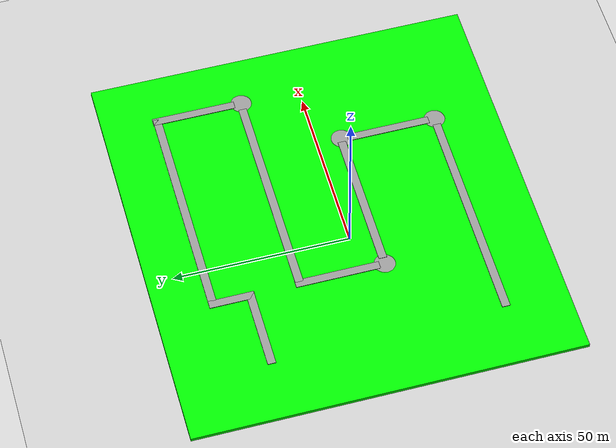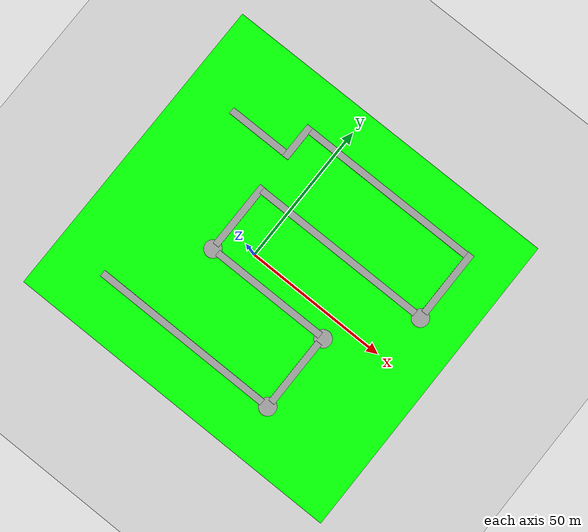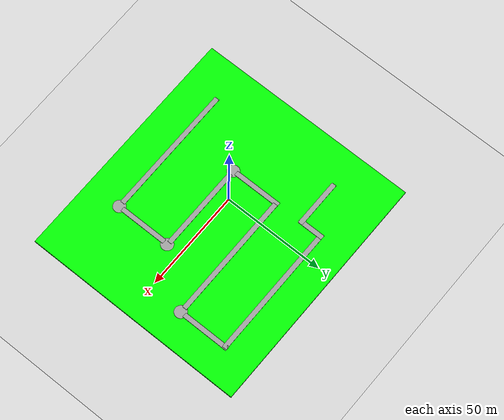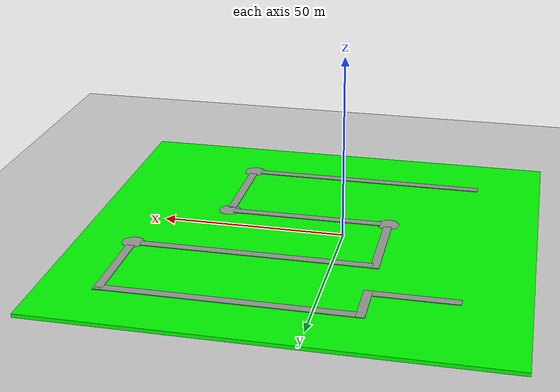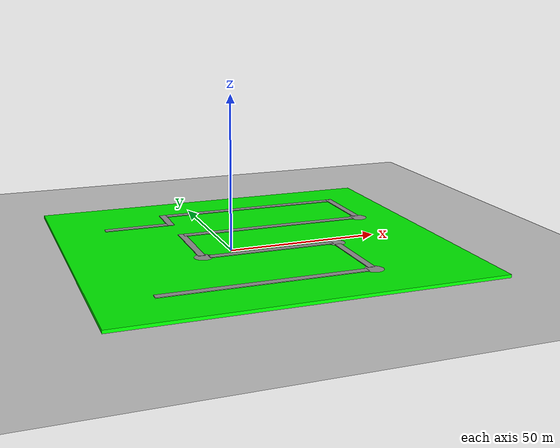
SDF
<sdf version="1.6">
 <world name="default">
  <light name="sun" type="directional">
   <pose>0 0 10 0 -0 0</pose>
   <diffuse>0.8 0.8 0.8 1</diffuse>
   <specular>0.2 0.2 0.2 1</specular>
   <attenuation>
    <range>1000</range>
    <constant>0.9</constant>
    <linear>0.01</linear>
    <quadratic>0.001</quadratic>
   </attenuation>
   <direction>-0.5 0.1 -0.9</direction>
  </light>
  <model name="ground_plane">
   <static>1</static>
   <link name="link">
    <collision name="collision">
     <geometry><plane><normal>0 0 1</normal><size>100 100</size></plane></geometry>
     <surface>
      <contact><collide_bitmask>65535</collide_bitmask></contact>
      <friction><ode><mu>100</mu><mu2>50</mu2></ode></friction>
     </surface>
    </collision>
    <visual name="visual">
     <cast_shadows>0</cast_shadows>
     <geometry><plane><normal>0 0 1</normal><size>100 100</size></plane></geometry>
     <material>
      <script><uri>file://media/materials/scripts/gazebo.material</uri><name>Gazebo/Grey</name></script>
     </material>
    </visual>
   </link>
  </model>
  <gravity>0 0 -9.8</gravity>
  <magnetic_field>6e-06 2.3e-05 -4.2e-05</magnetic_field>
  <atmosphere type="adiabatic"/>
  <physics name="default_physics" default="0" type="ode">
   <max_step_size>0.001</max_step_size>
   <real_time_factor>1</real_time_factor>
   <real_time_update_rate>1000</real_time_update_rate>
  </physics>
  <scene><ambient>0.4 0.4 0.4 1</ambient><background>0.7 0.7 0.7 1</background><shadows>1</shadows></scene>
  <audio><device>default</device></audio>
  <spherical_coordinates>
   <surface_model>EARTH_WGS84</surface_model>
   <latitude_deg>0</latitude_deg>
   <longitude_deg>0</longitude_deg>
   <elevation>0</elevation>
   <heading_deg>0</heading_deg>
  </spherical_coordinates>
  <model name="ground-1">
   <link name="link_0">
    <inertial>
     <mass>13145.8</mass>
     <inertia>
      <ixx>1.31831e+07</ixx>
      <ixy>0</ixy>
      <ixz>0</ixz>
      <iyy>1.57336e+07</iyy>
      <iyz>0</iyz>
      <izz>2.89145e+07</izz>
     </inertia>
    </inertial>
    <visual name="visual">
     <geometry><box><size>119.839 109.696 1</size></box></geometry>
     <material>
      <lighting>1</lighting>
      <script><uri>file://media/materials/scripts/gazebo.material</uri><name>Gazebo/Grey</name></script>
      <ambient>0 1 0 0</ambient>
      <shader type="vertex"><normal_map>__default__</normal_map></shader>
      <diffuse>0.7 0.7 0.7 1</diffuse>
      <specular>0.01 0.01 0.01 1</specular>
      <emissive>0 0 0 1</emissive>
     </material>
    </visual>
    <collision name="collision">
     <geometry><box><size>119.839 109.696 1</size></box></geometry>
     <surface>
      <friction>
       <ode><mu>1</mu><mu2>1</mu2><fdir1>0 0 0</fdir1><slip1>0</slip1><slip2>0</slip2></ode>
       <torsional>
        <coefficient>1</coefficient>
        <patch_radius>0</patch_radius>
        <surface_radius>0</surface_radius>
        <use_patch_radius>1</use_patch_radius>
        <ode><slip>0</slip></ode>
       </torsional>
      </friction>
      <bounce><restitution_coefficient>0</restitution_coefficient><threshold>1e+06</threshold></bounce>
      <contact>
       <collide_without_contact>0</collide_without_contact>
       <collide_without_contact_bitmask>1</collide_without_contact_bitmask>
       <collide_bitmask>1</collide_bitmask>
       <ode>
        <soft_cfm>0</soft_cfm>
        <soft_erp>0.2</soft_erp>
        <kp>1e+13</kp>
        <kd>1</kd>
        <max_vel>0.01</max_vel>
        <min_depth>0</min_depth>
       </ode>
       <bullet>
        <split_impulse>1</split_impulse>
        <split_impulse_penetration_threshold>-0.01</split_impulse_penetration_threshold>
        <soft_cfm>0</soft_cfm>
        <soft_erp>0.2</soft_erp>
        <kp>1e+13</kp>
        <kd>1</kd>
       </bullet>
      </contact>
     </surface>
    </collision>
   </link>
   <static>0</static>
   <pose>8.66268 2.77152 0.5 -0 -0 -0</pose>
  </model>
  <model name="track-4">
   <link name="link_0">
    <inertial>
     <mass>29.1805</mass>
     <inertia><ixx>13.0191</ixx><ixy>0</ixy><ixz>0</ixz><iyy>10129.7</iyy><iyz>0</iyz><izz>10142.6</izz></inertia>
    </inertial>
    <pose>-16.743 -39.8906 0 0 -0 0</pose>
    <visual name="visual">
     <geometry><box><size>64.5418 2.30552 0.196157</size></box></geometry>
     <material>
      <lighting>1</lighting>
      <script><uri>file://media/materials/scripts/gazebo.material</uri><name>Gazebo/Grey</name></script>
      <emissive>0 0 0 1</emissive>
     </material>
    </visual>
    <collision name="collision">
     <geometry><box><size>64.5418 2.30552 0.196157</size></box></geometry>
     <surface>
      <friction>
       <ode><mu>1</mu><mu2>1</mu2><fdir1>0 0 0</fdir1><slip1>0</slip1><slip2>0</slip2></ode>
       <torsional>
        <coefficient>1</coefficient>
        <patch_radius>0</patch_radius>
        <surface_radius>0</surface_radius>
        <use_patch_radius>1</use_patch_radius>
        <ode><slip>0</slip></ode>
       </torsional>
      </friction>
      <bounce><restitution_coefficient>0</restitution_coefficient><threshold>1e+06</threshold></bounce>
      <contact>
       <collide_without_contact>0</collide_without_contact>
       <collide_without_contact_bitmask>1</collide_without_contact_bitmask>
       <collide_bitmask>1</collide_bitmask>
       <ode>
        <soft_cfm>0</soft_cfm>
        <soft_erp>0.2</soft_erp>
        <kp>1e+13</kp>
        <kd>1</kd>
        <max_vel>0.01</max_vel>
        <min_depth>0</min_depth>
       </ode>
       <bullet>
        <split_impulse>1</split_impulse>
        <split_impulse_penetration_threshold>-0.01</split_impulse_penetration_threshold>
        <soft_cfm>0</soft_cfm>
        <soft_erp>0.2</soft_erp>
        <kp>1e+13</kp>
        <kd>1</kd>
       </bullet>
      </contact>
     </surface>
    </collision>
   </link>
   <link name="link_0_clone">
    <inertial>
     <mass>10.7667</mass>
     <inertia><ixx>4.80366</ixx><ixy>0</ixy><ixz>0</ixz><iyy>508.854</iyy><iyz>0</iyz><izz>513.588</izz></inertia>
    </inertial>
    <pose>17.6988 -26.2153 0 0 0 -1.5707</pose>
    <visual name="visual">
     <geometry><box><size>23.8139 2.30552 0.196157</size></box></geometry>
     <material>
      <lighting>1</lighting>
      <script><uri>file://media/materials/scripts/gazebo.material</uri><name>Gazebo/Grey</name></script>
      <shader type="vertex"><normal_map>__default__</normal_map></shader>
      <ambient>0.3 0.3 0.3 1</ambient>
      <diffuse>0.7 0.7 0.7 1</diffuse>
      <specular>0.01 0.01 0.01 1</specular>
      <emissive>0 0 0 1</emissive>
     </material>
    </visual>
    <collision name="collision">
     <geometry><box><size>23.8139 2.30552 0.196157</size></box></geometry>
     <surface>
      <friction>
       <ode><mu>1</mu><mu2>1</mu2><fdir1>0 0 0</fdir1><slip1>0</slip1><slip2>0</slip2></ode>
       <torsional>
        <coefficient>1</coefficient>
        <patch_radius>0</patch_radius>
        <surface_radius>0</surface_radius>
        <use_patch_radius>1</use_patch_radius>
        <ode><slip>0</slip></ode>
       </torsional>
      </friction>
      <bounce><restitution_coefficient>0</restitution_coefficient><threshold>1e+06</threshold></bounce>
      <contact>
       <collide_without_contact>0</collide_without_contact>
       <collide_without_contact_bitmask>1</collide_without_contact_bitmask>
       <collide_bitmask>1</collide_bitmask>
       <ode>
        <soft_cfm>0</soft_cfm>
        <soft_erp>0.2</soft_erp>
        <kp>1e+13</kp>
        <kd>1</kd>
        <max_vel>0.01</max_vel>
        <min_depth>0</min_depth>
       </ode>
       <bullet>
        <split_impulse>1</split_impulse>
        <split_impulse_penetration_threshold>-0.01</split_impulse_penetration_threshold>
        <soft_cfm>0</soft_cfm>
        <soft_erp>0.2</soft_erp>
        <kp>1e+13</kp>
        <kd>1</kd>
       </bullet>
      </contact>
     </surface>
    </collision>
   </link>
   <link name="link_0_clone_0">
    <inertial>
     <mass>18.759</mass>
     <inertia><ixx>8.36949</ixx><ixy>0</ixy><ixz>0</ixz><iyy>2691.26</iyy><iyz>0</iyz><izz>2699.51</izz></inertia>
    </inertial>
    <pose>-4.06741 -12.273 0 0 -0 0</pose>
    <visual name="visual">
     <geometry><box><size>41.4914 2.30552 0.196157</size></box></geometry>
     <material>
      <lighting>1</lighting>
      <script><uri>file://media/materials/scripts/gazebo.material</uri><name>Gazebo/Grey</name></script>
      <shader type="pixel"/>
      <emissive>0 0 0 1</emissive>
     </material>
    </visual>
    <collision name="collision">
     <geometry><box><size>41.4914 2.30552 0.196157</size></box></geometry>
     <surface>
      <friction>
       <ode><mu>1</mu><mu2>1</mu2><fdir1>0 0 0</fdir1><slip1>0</slip1><slip2>0</slip2></ode>
       <torsional>
        <coefficient>1</coefficient>
        <patch_radius>0</patch_radius>
        <surface_radius>0</surface_radius>
        <use_patch_radius>1</use_patch_radius>
        <ode><slip>0</slip></ode>
       </torsional>
      </friction>
      <bounce><restitution_coefficient>0</restitution_coefficient><threshold>1e+06</threshold></bounce>
      <contact>
       <collide_without_contact>0</collide_without_contact>
       <collide_without_contact_bitmask>1</collide_without_contact_bitmask>
       <collide_bitmask>1</collide_bitmask>
       <ode>
        <soft_cfm>0</soft_cfm>
        <soft_erp>0.2</soft_erp>
        <kp>1e+13</kp>
        <kd>1</kd>
        <max_vel>0.01</max_vel>
        <min_depth>0</min_depth>
       </ode>
       <bullet>
        <split_impulse>1</split_impulse>
        <split_impulse_penetration_threshold>-0.01</split_impulse_penetration_threshold>
        <soft_cfm>0</soft_cfm>
        <soft_erp>0.2</soft_erp>
        <kp>1e+13</kp>
        <kd>1</kd>
       </bullet>
      </contact>
     </surface>
    </collision>
   </link>
   <link name="link_0_clone_0_clone">
    <inertial>
     <mass>27.9433</mass>
     <inertia><ixx>12.4671</ixx><ixy>0</ixy><ixz>0</ixz><iyy>8895.12</iyy><iyz>0</iyz><izz>8907.41</izz></inertia>
    </inertial>
    <pose>4.58261 11.8264 0 0 -0 0</pose>
    <visual name="visual">
     <geometry><box><size>61.8053 2.30552 0.196157</size></box></geometry>
     <material>
      <lighting>1</lighting>
      <script><uri>file://media/materials/scripts/gazebo.material</uri><name>Gazebo/Grey</name></script>
      <shader type="pixel"><normal_map>__default__</normal_map></shader>
      <emissive>0 0 0 1</emissive>
     </material>
    </visual>
    <collision name="collision">
     <geometry><box><size>61.8053 2.30552 0.196157</size></box></geometry>
     <surface>
      <friction>
       <ode><mu>1</mu><mu2>1</mu2><fdir1>0 0 0</fdir1><slip1>0</slip1><slip2>0</slip2></ode>
       <torsional>
        <coefficient>1</coefficient>
        <patch_radius>0</patch_radius>
        <surface_radius>0</surface_radius>
        <use_patch_radius>1</use_patch_radius>
        <ode><slip>0</slip></ode>
       </torsional>
      </friction>
      <bounce><restitution_coefficient>0</restitution_coefficient><threshold>1e+06</threshold></bounce>
      <contact>
       <collide_without_contact>0</collide_without_contact>
       <collide_without_contact_bitmask>1</collide_without_contact_bitmask>
       <collide_bitmask>1</collide_bitmask>
       <ode>
        <soft_cfm>0</soft_cfm>
        <soft_erp>0.2</soft_erp>
        <kp>1e+13</kp>
        <kd>1</kd>
        <max_vel>0.01</max_vel>
        <min_depth>0</min_depth>
       </ode>
       <bullet>
        <split_impulse>1</split_impulse>
        <split_impulse_penetration_threshold>-0.01</split_impulse_penetration_threshold>
        <soft_cfm>0</soft_cfm>
        <soft_erp>0.2</soft_erp>
        <kp>1e+13</kp>
        <kd>1</kd>
       </bullet>
      </contact>
     </surface>
    </collision>
   </link>
   <link name="link_0_clone_0_clone_clone">
    <inertial>
     <mass>29.161</mass>
     <inertia><ixx>13.0104</ixx><ixy>0</ixy><ixz>0</ixz><iyy>10109.5</iyy><iyz>0</iyz><izz>10122.3</izz></inertia>
    </inertial>
    <pose>6.13917 36.1901 0 0 -0 0</pose>
    <visual name="visual">
     <geometry><box><size>64.4987 2.30552 0.196157</size></box></geometry>
     <material>
      <lighting>1</lighting>
      <script><uri>file://media/materials/scripts/gazebo.material</uri><name>Gazebo/Grey</name></script>
      <shader type="pixel"><normal_map>__default__</normal_map></shader>
      <emissive>0 0 0 1</emissive>
     </material>
    </visual>
    <collision name="collision">
     <geometry><box><size>64.4987 2.30552 0.196157</size></box></geometry>
     <surface>
      <friction>
       <ode><mu>1</mu><mu2>1</mu2><fdir1>0 0 0</fdir1><slip1>0</slip1><slip2>0</slip2></ode>
       <torsional>
        <coefficient>1</coefficient>
        <patch_radius>0</patch_radius>
        <surface_radius>0</surface_radius>
        <use_patch_radius>1</use_patch_radius>
        <ode><slip>0</slip></ode>
       </torsional>
      </friction>
      <bounce><restitution_coefficient>0</restitution_coefficient><threshold>1e+06</threshold></bounce>
      <contact>
       <collide_without_contact>0</collide_without_contact>
       <collide_without_contact_bitmask>1</collide_without_contact_bitmask>
       <collide_bitmask>1</collide_bitmask>
       <ode>
        <soft_cfm>0</soft_cfm>
        <soft_erp>0.2</soft_erp>
        <kp>1e+13</kp>
        <kd>1</kd>
        <max_vel>0.01</max_vel>
        <min_depth>0</min_depth>
       </ode>
       <bullet>
        <split_impulse>1</split_impulse>
        <split_impulse_penetration_threshold>-0.01</split_impulse_penetration_threshold>
        <soft_cfm>0</soft_cfm>
        <soft_erp>0.2</soft_erp>
        <kp>1e+13</kp>
        <kd>1</kd>
       </bullet>
      </contact>
     </surface>
    </collision>
   </link>
   <link name="link_0_clone_clone">
    <inertial>
     <mass>10.7667</mass>
     <inertia><ixx>4.80366</ixx><ixy>0</ixy><ixz>0</ixz><iyy>508.854</iyy><iyz>0</iyz><izz>513.588</izz></inertia>
    </inertial>
    <pose>-26.8032 1.15256 0 0 0 -1.5707</pose>
    <visual name="visual">
     <geometry><box><size>23.8139 2.30552 0.196157</size></box></geometry>
     <material>
      <lighting>1</lighting>
      <script><uri>file://media/materials/scripts/gazebo.material</uri><name>Gazebo/Grey</name></script>
      <shader type="vertex"><normal_map>__default__</normal_map></shader>
      <ambient>0.3 0.3 0.3 1</ambient>
      <diffuse>0.7 0.7 0.7 1</diffuse>
      <specular>0.01 0.01 0.01 1</specular>
      <emissive>0 0 0 1</emissive>
     </material>
    </visual>
    <collision name="collision">
     <geometry><box><size>23.8139 2.30552 0.196157</size></box></geometry>
     <surface>
      <friction>
       <ode><mu>1</mu><mu2>1</mu2><fdir1>0 0 0</fdir1><slip1>0</slip1><slip2>0</slip2></ode>
       <torsional>
        <coefficient>1</coefficient>
        <patch_radius>0</patch_radius>
        <surface_radius>0</surface_radius>
        <use_patch_radius>1</use_patch_radius>
        <ode><slip>0</slip></ode>
       </torsional>
      </friction>
      <bounce><restitution_coefficient>0</restitution_coefficient><threshold>1e+06</threshold></bounce>
      <contact>
       <collide_without_contact>0</collide_without_contact>
       <collide_without_contact_bitmask>1</collide_without_contact_bitmask>
       <collide_bitmask>1</collide_bitmask>
       <ode>
        <soft_cfm>0</soft_cfm>
        <soft_erp>0.2</soft_erp>
        <kp>1e+13</kp>
        <kd>1</kd>
        <max_vel>0.01</max_vel>
        <min_depth>0</min_depth>
       </ode>
       <bullet>
        <split_impulse>1</split_impulse>
        <split_impulse_penetration_threshold>-0.01</split_impulse_penetration_threshold>
        <soft_cfm>0</soft_cfm>
        <soft_erp>0.2</soft_erp>
        <kp>1e+13</kp>
        <kd>1</kd>
       </bullet>
      </contact>
     </surface>
    </collision>
   </link>
   <link name="link_0_clone_clone_clone">
    <inertial>
     <mass>10.7667</mass>
     <inertia><ixx>4.80366</ixx><ixy>0</ixy><ixz>0</ixz><iyy>508.854</iyy><iyz>0</iyz><izz>513.588</izz></inertia>
    </inertial>
    <pose>37.7157 25.5747 0 0 0 -1.5707</pose>
    <visual name="visual">
     <geometry><box><size>23.8139 2.30552 0.196157</size></box></geometry>
     <material>
      <lighting>1</lighting>
      <script><uri>file://media/materials/scripts/gazebo.material</uri><name>Gazebo/Grey</name></script>
      <shader type="vertex"><normal_map>__default__</normal_map></shader>
      <ambient>0.3 0.3 0.3 1</ambient>
      <diffuse>0.7 0.7 0.7 1</diffuse>
      <specular>0.01 0.01 0.01 1</specular>
      <emissive>0 0 0 1</emissive>
     </material>
    </visual>
    <collision name="collision">
     <geometry><box><size>23.8139 2.30552 0.196157</size></box></geometry>
     <surface>
      <friction>
       <ode><mu>1</mu><mu2>1</mu2><fdir1>0 0 0</fdir1><slip1>0</slip1><slip2>0</slip2></ode>
       <torsional>
        <coefficient>1</coefficient>
        <patch_radius>0</patch_radius>
        <surface_radius>0</surface_radius>
        <use_patch_radius>1</use_patch_radius>
        <ode><slip>0</slip></ode>
       </torsional>
      </friction>
      <bounce><restitution_coefficient>0</restitution_coefficient><threshold>1e+06</threshold></bounce>
      <contact>
       <collide_without_contact>0</collide_without_contact>
       <collide_without_contact_bitmask>1</collide_without_contact_bitmask>
       <collide_bitmask>1</collide_bitmask>
       <ode>
        <soft_cfm>0</soft_cfm>
        <soft_erp>0.2</soft_erp>
        <kp>1e+13</kp>
        <kd>1</kd>
        <max_vel>0.01</max_vel>
        <min_depth>0</min_depth>
       </ode>
       <bullet>
        <split_impulse>1</split_impulse>
        <split_impulse_penetration_threshold>-0.01</split_impulse_penetration_threshold>
        <soft_cfm>0</soft_cfm>
        <soft_erp>0.2</soft_erp>
        <kp>1e+13</kp>
        <kd>1</kd>
       </bullet>
      </contact>
     </surface>
    </collision>
   </link>
   <link name="link_0_clone_clone_clone_0">
    <inertial>
     <mass>5.79198</mass>
     <inertia><ixx>2.58414</ixx><ixy>0</ixy><ixz>0</ixz><iyy>79.2313</iyy><iyz>0</iyz><izz>81.7783</izz></inertia>
    </inertial>
    <pose>-27.1302 30.927 0 0 0 -1.5707</pose>
    <visual name="visual">
     <geometry><box><size>12.8108 2.30552 0.196157</size></box></geometry>
     <material>
      <lighting>1</lighting>
      <script><uri>file://media/materials/scripts/gazebo.material</uri><name>Gazebo/Grey</name></script>
      <shader type="vertex"><normal_map>__default__</normal_map></shader>
      <ambient>0.3 0.3 0.3 1</ambient>
      <diffuse>0.7 0.7 0.7 1</diffuse>
      <specular>0.01 0.01 0.01 1</specular>
      <emissive>0 0 0 1</emissive>
     </material>
    </visual>
    <collision name="collision">
     <geometry><box><size>12.8108 2.30552 0.196157</size></box></geometry>
     <surface>
      <friction>
       <ode><mu>1</mu><mu2>1</mu2><fdir1>0 0 0</fdir1><slip1>0</slip1><slip2>0</slip2></ode>
       <torsional>
        <coefficient>1</coefficient>
        <patch_radius>0</patch_radius>
        <surface_radius>0</surface_radius>
        <use_patch_radius>1</use_patch_radius>
        <ode><slip>0</slip></ode>
       </torsional>
      </friction>
      <bounce><restitution_coefficient>0</restitution_coefficient><threshold>1e+06</threshold></bounce>
      <contact>
       <collide_without_contact>0</collide_without_contact>
       <collide_without_contact_bitmask>1</collide_without_contact_bitmask>
       <collide_bitmask>1</collide_bitmask>
       <ode>
        <soft_cfm>0</soft_cfm>
        <soft_erp>0.2</soft_erp>
        <kp>1e+13</kp>
        <kd>1</kd>
        <max_vel>0.01</max_vel>
        <min_depth>0</min_depth>
       </ode>
       <bullet>
        <split_impulse>1</split_impulse>
        <split_impulse_penetration_threshold>-0.01</split_impulse_penetration_threshold>
        <soft_cfm>0</soft_cfm>
        <soft_erp>0.2</soft_erp>
        <kp>1e+13</kp>
        <kd>1</kd>
       </bullet>
      </contact>
     </surface>
    </collision>
   </link>
   <link name="link_0_clone_clone_clone_1">
    <inertial>
     <mass>10.7667</mass>
     <inertia><ixx>4.80366</ixx><ixy>0</ixy><ixz>0</ixz><iyy>508.854</iyy><iyz>0</iyz><izz>513.588</izz></inertia>
    </inertial>
    <pose>-37.9405 25.7118 0 0 -0 0</pose>
    <visual name="visual">
     <geometry><box><size>23.8139 2.30552 0.196157</size></box></geometry>
     <material>
      <lighting>1</lighting>
      <script><uri>file://media/materials/scripts/gazebo.material</uri><name>Gazebo/Grey</name></script>
      <shader type="vertex"><normal_map>__default__</normal_map></shader>
      <ambient>0.3 0.3 0.3 1</ambient>
      <diffuse>0.7 0.7 0.7 1</diffuse>
      <specular>0.01 0.01 0.01 1</specular>
      <emissive>0 0 0 1</emissive>
     </material>
    </visual>
    <collision name="collision">
     <geometry><box><size>23.8139 2.30552 0.196157</size></box></geometry>
     <surface>
      <friction>
       <ode><mu>1</mu><mu2>1</mu2><fdir1>0 0 0</fdir1><slip1>0</slip1><slip2>0</slip2></ode>
       <torsional>
        <coefficient>1</coefficient>
        <patch_radius>0</patch_radius>
        <surface_radius>0</surface_radius>
        <use_patch_radius>1</use_patch_radius>
        <ode><slip>0</slip></ode>
       </torsional>
      </friction>
      <bounce><restitution_coefficient>0</restitution_coefficient><threshold>1e+06</threshold></bounce>
      <contact>
       <collide_without_contact>0</collide_without_contact>
       <collide_without_contact_bitmask>1</collide_without_contact_bitmask>
       <collide_bitmask>1</collide_bitmask>
       <ode>
        <soft_cfm>0</soft_cfm>
        <soft_erp>0.2</soft_erp>
        <kp>1e+13</kp>
        <kd>1</kd>
        <max_vel>0.01</max_vel>
        <min_depth>0</min_depth>
       </ode>
       <bullet>
        <split_impulse>1</split_impulse>
        <split_impulse_penetration_threshold>-0.01</split_impulse_penetration_threshold>
        <soft_cfm>0</soft_cfm>
        <soft_erp>0.2</soft_erp>
        <kp>1e+13</kp>
        <kd>1</kd>
       </bullet>
      </contact>
     </surface>
    </collision>
   </link>
   <link name="link_1">
    <inertial>
     <mass>0.0377646</mass>
     <inertia>
      <ixx>0.0836994</ixx>
      <ixy>0</ixy>
      <ixz>0</ixz>
      <iyy>0.0836994</iyy>
      <iyz>0</iyz>
      <izz>0.167399</izz>
     </inertia>
    </inertial>
    <pose>17.6531 -39.8994 0 0 -0 0</pose>
    <visual name="visual">
     <geometry><cylinder><radius>2.97748</radius><length>0.00106447</length></cylinder></geometry>
     <material>
      <lighting>1</lighting>
      <script><uri>file://media/materials/scripts/gazebo.material</uri><name>Gazebo/Grey</name></script>
      <emissive>0 0 0 1</emissive>
     </material>
    </visual>
    <collision name="collision">
     <geometry><cylinder><radius>2.97748</radius><length>0.001064</length></cylinder></geometry>
     <surface>
      <friction>
       <ode><mu>1</mu><mu2>1</mu2><fdir1>0 0 0</fdir1><slip1>0</slip1><slip2>0</slip2></ode>
       <torsional>
        <coefficient>1</coefficient>
        <patch_radius>0</patch_radius>
        <surface_radius>0</surface_radius>
        <use_patch_radius>1</use_patch_radius>
        <ode><slip>0</slip></ode>
       </torsional>
      </friction>
      <bounce><restitution_coefficient>0</restitution_coefficient><threshold>1e+06</threshold></bounce>
      <contact>
       <collide_without_contact>0</collide_without_contact>
       <collide_without_contact_bitmask>1</collide_without_contact_bitmask>
       <collide_bitmask>1</collide_bitmask>
       <ode>
        <soft_cfm>0</soft_cfm>
        <soft_erp>0.2</soft_erp>
        <kp>1e+13</kp>
        <kd>1</kd>
        <max_vel>0.01</max_vel>
        <min_depth>0</min_depth>
       </ode>
       <bullet>
        <split_impulse>1</split_impulse>
        <split_impulse_penetration_threshold>-0.01</split_impulse_penetration_threshold>
        <soft_cfm>0</soft_cfm>
        <soft_erp>0.2</soft_erp>
        <kp>1e+13</kp>
        <kd>1</kd>
       </bullet>
      </contact>
     </surface>
    </collision>
   </link>
   <link name="link_1_clone">
    <inertial>
     <mass>0.0377646</mass>
     <inertia>
      <ixx>0.0836994</ixx>
      <ixy>0</ixy>
      <ixz>0</ixz>
      <iyy>0.0836994</iyy>
      <iyz>0</iyz>
      <izz>0.167399</izz>
     </inertia>
    </inertial>
    <pose>17.9304 -12.5311 0 0 -0 0</pose>
    <visual name="visual">
     <geometry><cylinder><radius>2.97748</radius><length>0.00106447</length></cylinder></geometry>
     <material>
      <lighting>1</lighting>
      <script><uri>file://media/materials/scripts/gazebo.material</uri><name>Gazebo/Grey</name></script>
      <shader type="pixel"/>
      <emissive>0 0 0 1</emissive>
     </material>
    </visual>
    <collision name="collision">
     <geometry><cylinder><radius>2.97748</radius><length>0.001064</length></cylinder></geometry>
     <surface>
      <friction>
       <ode><mu>1</mu><mu2>1</mu2><fdir1>0 0 0</fdir1><slip1>0</slip1><slip2>0</slip2></ode>
       <torsional>
        <coefficient>1</coefficient>
        <patch_radius>0</patch_radius>
        <surface_radius>0</surface_radius>
        <use_patch_radius>1</use_patch_radius>
        <ode><slip>0</slip></ode>
       </torsional>
      </friction>
      <bounce><restitution_coefficient>0</restitution_coefficient><threshold>1e+06</threshold></bounce>
      <contact>
       <collide_without_contact>0</collide_without_contact>
       <collide_without_contact_bitmask>1</collide_without_contact_bitmask>
       <collide_bitmask>1</collide_bitmask>
       <ode>
        <soft_cfm>0</soft_cfm>
        <soft_erp>0.2</soft_erp>
        <kp>1e+13</kp>
        <kd>1</kd>
        <max_vel>0.01</max_vel>
        <min_depth>0</min_depth>
       </ode>
       <bullet>
        <split_impulse>1</split_impulse>
        <split_impulse_penetration_threshold>-0.01</split_impulse_penetration_threshold>
        <soft_cfm>0</soft_cfm>
        <soft_erp>0.2</soft_erp>
        <kp>1e+13</kp>
        <kd>1</kd>
       </bullet>
      </contact>
     </surface>
    </collision>
   </link>
   <link name="link_1_clone_clone">
    <inertial>
     <mass>0.0377646</mass>
     <inertia>
      <ixx>0.0836994</ixx>
      <ixy>0</ixy>
      <ixz>0</ixz>
      <iyy>0.0836994</iyy>
      <iyz>0</iyz>
      <izz>0.167399</izz>
     </inertia>
    </inertial>
    <pose>-26.7295 -12.2425 0 0 -0 0</pose>
    <visual name="visual">
     <geometry><cylinder><radius>2.97748</radius><length>0.00106447</length></cylinder></geometry>
     <material>
      <lighting>1</lighting>
      <script><uri>file://media/materials/scripts/gazebo.material</uri><name>Gazebo/Grey</name></script>
      <shader type="pixel"/>
      <emissive>0 0 0 1</emissive>
     </material>
    </visual>
    <collision name="collision">
     <geometry><cylinder><radius>2.97748</radius><length>0.001064</length></cylinder></geometry>
     <surface>
      <friction>
       <ode><mu>1</mu><mu2>1</mu2><fdir1>0 0 0</fdir1><slip1>0</slip1><slip2>0</slip2></ode>
       <torsional>
        <coefficient>1</coefficient>
        <patch_radius>0</patch_radius>
        <surface_radius>0</surface_radius>
        <use_patch_radius>1</use_patch_radius>
        <ode><slip>0</slip></ode>
       </torsional>
      </friction>
      <bounce><restitution_coefficient>0</restitution_coefficient><threshold>1e+06</threshold></bounce>
      <contact>
       <collide_without_contact>0</collide_without_contact>
       <collide_without_contact_bitmask>1</collide_without_contact_bitmask>
       <collide_bitmask>1</collide_bitmask>
       <ode>
        <soft_cfm>0</soft_cfm>
        <soft_erp>0.2</soft_erp>
        <kp>1e+13</kp>
        <kd>1</kd>
        <max_vel>0.01</max_vel>
        <min_depth>0</min_depth>
       </ode>
       <bullet>
        <split_impulse>1</split_impulse>
        <split_impulse_penetration_threshold>-0.01</split_impulse_penetration_threshold>
        <soft_cfm>0</soft_cfm>
        <soft_erp>0.2</soft_erp>
        <kp>1e+13</kp>
        <kd>1</kd>
       </bullet>
      </contact>
     </surface>
    </collision>
   </link>
   <link name="link_1_clone_clone_0">
    <inertial>
     <mass>0.0377646</mass>
     <inertia>
      <ixx>0.0836994</ixx>
      <ixy>0</ixy>
      <ixz>0</ixz>
      <iyy>0.0836994</iyy>
      <iyz>0</iyz>
      <izz>0.167399</izz>
     </inertia>
    </inertial>
    <pose>37.6941 11.6693 0 0 -0 0</pose>
    <visual name="visual">
     <geometry><cylinder><radius>2.97748</radius><length>0.00106447</length></cylinder></geometry>
     <material>
      <lighting>1</lighting>
      <script><uri>file://media/materials/scripts/gazebo.material</uri><name>Gazebo/Grey</name></script>
      <shader type="pixel"/>
      <emissive>0 0 0 1</emissive>
     </material>
    </visual>
    <collision name="collision">
     <geometry><cylinder><radius>2.97748</radius><length>0.001064</length></cylinder></geometry>
     <surface>
      <friction>
       <ode><mu>1</mu><mu2>1</mu2><fdir1>0 0 0</fdir1><slip1>0</slip1><slip2>0</slip2></ode>
       <torsional>
        <coefficient>1</coefficient>
        <patch_radius>0</patch_radius>
        <surface_radius>0</surface_radius>
        <use_patch_radius>1</use_patch_radius>
        <ode><slip>0</slip></ode>
       </torsional>
      </friction>
      <bounce><restitution_coefficient>0</restitution_coefficient><threshold>1e+06</threshold></bounce>
      <contact>
       <collide_without_contact>0</collide_without_contact>
       <collide_without_contact_bitmask>1</collide_without_contact_bitmask>
       <collide_bitmask>1</collide_bitmask>
       <ode>
        <soft_cfm>0</soft_cfm>
        <soft_erp>0.2</soft_erp>
        <kp>1e+13</kp>
        <kd>1</kd>
        <max_vel>0.01</max_vel>
        <min_depth>0</min_depth>
       </ode>
       <bullet>
        <split_impulse>1</split_impulse>
        <split_impulse_penetration_threshold>-0.01</split_impulse_penetration_threshold>
        <soft_cfm>0</soft_cfm>
        <soft_erp>0.2</soft_erp>
        <kp>1e+13</kp>
        <kd>1</kd>
       </bullet>
      </contact>
     </surface>
    </collision>
   </link>
   <joint name="link_0_JOINT_0" type="fixed">
    <parent>link_0</parent>
    <child>link_1</child>
    <physics>
     <ode><limit><cfm>0</cfm><erp>0.2</erp></limit><suspension><cfm>0</cfm><erp>0.2</erp></suspension></ode>
    </physics>
   </joint>
   <joint name="link_0_clone_0_JOINT_4" type="fixed">
    <parent>link_0_clone_0</parent>
    <child>link_1_clone_clone</child>
    <physics>
     <ode><limit><cfm>0</cfm><erp>0.2</erp></limit><suspension><cfm>0</cfm><erp>0.2</erp></suspension></ode>
    </physics>
   </joint>
   <joint name="link_0_clone_0_clone_JOINT_7" type="fixed">
    <parent>link_0_clone_0_clone</parent>
    <child>link_1_clone_clone_0</child>
    <physics>
     <ode><limit><cfm>0</cfm><erp>0.2</erp></limit><suspension><cfm>0</cfm><erp>0.2</erp></suspension></ode>
    </physics>
   </joint>
   <joint name="link_0_clone_0_clone_clone_JOINT_10" type="fixed">
    <parent>link_0_clone_0_clone_clone</parent>
    <child>link_0_clone_clone_clone_0</child>
    <physics>
     <ode><limit><cfm>0</cfm><erp>0.2</erp></limit><suspension><cfm>0</cfm><erp>0.2</erp></suspension></ode>
    </physics>
   </joint>
   <joint name="link_0_clone_JOINT_2" type="fixed">
    <parent>link_0_clone</parent>
    <child>link_1_clone</child>
    <physics>
     <ode><limit><cfm>0</cfm><erp>0.2</erp></limit><suspension><cfm>0</cfm><erp>0.2</erp></suspension></ode>
    </physics>
   </joint>
   <joint name="link_0_clone_clone_JOINT_6" type="fixed">
    <parent>link_0_clone_clone</parent>
    <child>link_0_clone_0_clone</child>
    <physics>
     <ode><limit><cfm>0</cfm><erp>0.2</erp></limit><suspension><cfm>0</cfm><erp>0.2</erp></suspension></ode>
    </physics>
   </joint>
   <joint name="link_0_clone_clone_clone_0_JOINT_11" type="fixed">
    <parent>link_0_clone_clone_clone_0</parent>
    <child>link_0_clone_clone_clone_1</child>
    <physics>
     <ode><limit><cfm>0</cfm><erp>0.2</erp></limit><suspension><cfm>0</cfm><erp>0.2</erp></suspension></ode>
    </physics>
   </joint>
   <joint name="link_0_clone_clone_clone_JOINT_9" type="fixed">
    <parent>link_0_clone_clone_clone</parent>
    <child>link_0_clone_0_clone_clone</child>
    <physics>
     <ode><limit><cfm>0</cfm><erp>0.2</erp></limit><suspension><cfm>0</cfm><erp>0.2</erp></suspension></ode>
    </physics>
   </joint>
   <joint name="link_1_JOINT_1" type="fixed">
    <parent>link_1</parent>
    <child>link_0_clone</child>
    <physics>
     <ode><limit><cfm>0</cfm><erp>0.2</erp></limit><suspension><cfm>0</cfm><erp>0.2</erp></suspension></ode>
    </physics>
   </joint>
   <joint name="link_1_clone_JOINT_3" type="fixed">
    <parent>link_1_clone</parent>
    <child>link_0_clone_0</child>
    <physics>
     <ode><limit><cfm>0</cfm><erp>0.2</erp></limit><suspension><cfm>0</cfm><erp>0.2</erp></suspension></ode>
    </physics>
   </joint>
   <joint name="link_1_clone_clone_0_JOINT_8" type="fixed">
    <parent>link_1_clone_clone_0</parent>
    <child>link_0_clone_clone_clone</child>
    <physics>
     <ode><limit><cfm>0</cfm><erp>0.2</erp></limit><suspension><cfm>0</cfm><erp>0.2</erp></suspension></ode>
    </physics>
   </joint>
   <joint name="link_1_clone_clone_JOINT_5" type="fixed">
    <parent>link_1_clone_clone</parent>
    <child>link_0_clone_clone</child>
    <physics>
     <ode><limit><cfm>0</cfm><erp>0.2</erp></limit><suspension><cfm>0</cfm><erp>0.2</erp></suspension></ode>
    </physics>
   </joint>
   <static>0</static>
   <pose>15.4652 5.54729 1.0978 -7e-06 0 0</pose>
  </model>
 </world>
</sdf>
